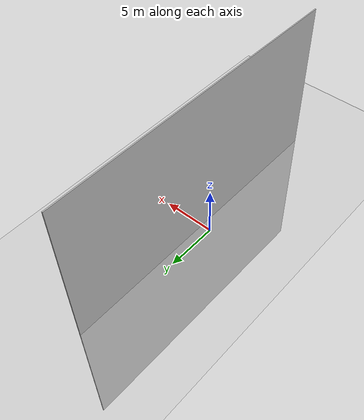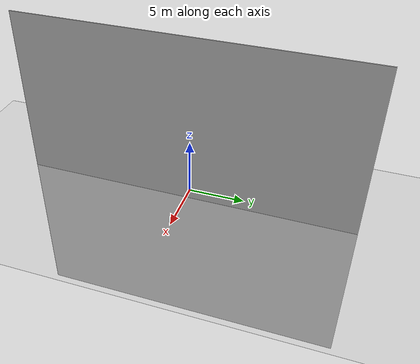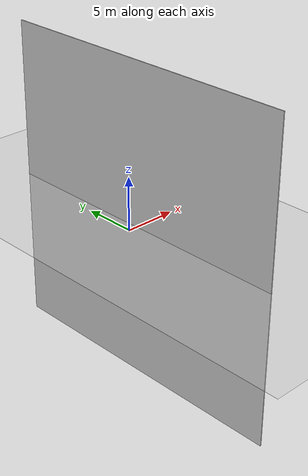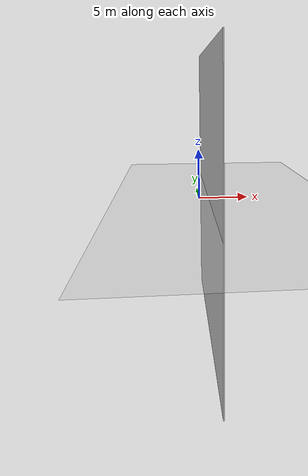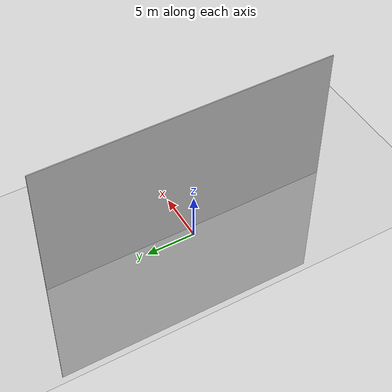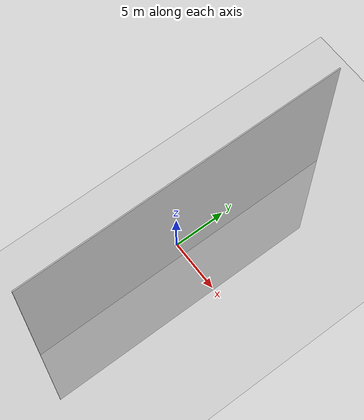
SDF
<?xml version="1.0"?>
<sdf version="1.6">
    <world name="default">
        <include>
            <uri>model://sun</uri>
        </include>

        <include>
            <uri>model://ground_plane</uri>
        </include>

        <include>
            <uri>model://realsense_camera</uri>
        </include>

        <model name="dummy_model">
            <pose>1.0 0.0 0.0 0.0 0.0 0.0</pose>
            <link name="link_1">
                <pose>0.0 0.0 0.0 0.0 0.0 0.0</pose>
                <inertial>
                    <pose>0.0 0.0 0.0 0.0 0.0 0.0</pose>
                    <inertia>
                        <ixx>1.0</ixx>
                        <ixy>0.0</ixy>
                        <ixz>0.0</ixz>
                        <iyy>1.0</iyy>
                        <iyz>0.0</iyz>
                        <izz>1.0</izz>
                    </inertia>
                    <mass>10.0</mass>
                </inertial>
                <visual name="visual_box">
                    <pose>0.0 0.0 0.0 0.0 0.0 0.0</pose>
                    <geometry>
                        <box>
                            <size>0.1 30.0 30.0</size>
                        </box>
                    </geometry>
                    <cast_shadows>true</cast_shadows>
                    <laser_retro>100.0</laser_retro>
                </visual>
                <collision name="collision_box">
                    <pose>0.0 0.0 0.0 0.0 0.0 0.0</pose>
                    <max_contacts>250</max_contacts>
                    <geometry>
                        <box>
                            <size>0.1 30.0 30.0</size>
                        </box>
                    </geometry>
                    <surface>
                        <friction>
                            <ode>
                                <mu>0.5</mu>
                                <mu2>0.2</mu2>
                                <fdir1>1.0 0 0</fdir1>
                                <slip1>0</slip1>
                                <slip2>0</slip2>
                            </ode>
                        </friction>
                        <bounce>
                            <restitution_coefficient>0</restitution_coefficient>
                            <threshold>1000000.0</threshold>
                        </bounce>
                        <contact>
                            <ode>
                                <soft_cfm>0</soft_cfm>
                                <soft_erp>0.2</soft_erp>
                                <kp>1e15</kp>
                                <kd>1e13</kd>
                                <max_vel>100.0</max_vel>
                                <min_depth>0.0001</min_depth>
                            </ode>
                        </contact>
                    </surface>
                    <laser_retro>100.0</laser_retro>
                </collision>
                <gravity>true</gravity>
                <self_collide>true</self_collide>
                <kinematic>false</kinematic>
            </link>
            <static>false</static>
        </model>
    </world>
</sdf>

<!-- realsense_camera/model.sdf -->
<sdf version="1.4">
  <model name="realsense_camera">
    <plugin name="realsense_plugin" filename="librealsense_gazebo_plugin.so"/>
    <pose frame="">0 0 0.015 0 0 0</pose>
    <link name="link">
      <inertial>
        <mass>0.0615752</mass>
        <inertia>
          <ixx>9.108e-05</ixx>
          <ixy>0</ixy>
          <ixz>0</ixz>
          <iyy>2.51e-06</iyy>
          <iyz>0</iyz>
          <izz>8.931e-05</izz>
        </inertia>
        <pose frame=''>0 0 0 0 0 0</pose>
      </inertial>
      <self_collide>0</self_collide>
      <enable_wind>0</enable_wind>
      <kinematic>0</kinematic>
      <gravity>1</gravity>
      <visual name="visual">
        <geometry>
          <mesh>
            <uri>model://realsense_camera/meshes/realsense.dae</uri>
          </mesh>
        </geometry>
      </visual>
      <collision name='collision'>
        <laser_retro>0</laser_retro>
        <max_contacts>10</max_contacts>
        <pose frame=''>0 0 0 0 -0 0</pose>
        <geometry>
          <box>
            <size>0.0078 0.130 0.0192</size>
          </box>
        </geometry>
        <surface>
          <friction>
            <ode>
              <mu>1</mu>
              <mu2>1</mu2>
              <fdir1>0 0 0</fdir1>
              <slip1>0</slip1>
              <slip2>0</slip2>
            </ode>
            <torsional>
              <coefficient>1</coefficient>
              <patch_radius>0</patch_radius>
              <surface_radius>0</surface_radius>
              <use_patch_radius>1</use_patch_radius>
              <ode>
                <slip>0</slip>
              </ode>
            </torsional>
          </friction>
          <bounce>
            <restitution_coefficient>0</restitution_coefficient>
            <threshold>1e+06</threshold>
          </bounce>
          <contact>
            <collide_without_contact>0</collide_without_contact>
            <collide_without_contact_bitmask>1</collide_without_contact_bitmask>
            <collide_bitmask>1</collide_bitmask>
            <ode>
              <soft_cfm>0</soft_cfm>
              <soft_erp>0.2</soft_erp>
              <kp>1e+13</kp>
              <kd>1</kd>
              <max_vel>0.01</max_vel>
              <min_depth>0</min_depth>
            </ode>
            <bullet>
              <split_impulse>1</split_impulse>
              <split_impulse_penetration_threshold>-0.01</split_impulse_penetration_threshold>
              <soft_cfm>0</soft_cfm>
              <soft_erp>0.2</soft_erp>
              <kp>1e+13</kp>
              <kd>1</kd>
            </bullet>
          </contact>
        </surface>
      </collision>
      <sensor name="color" type="camera">
        <pose frame="">0 -0.046 0.004 0 0 0</pose>
        <camera name="__default__">
          <horizontal_fov>1.047</horizontal_fov>
          <image>
            <width>640</width>
            <height>480</height>
            <format>RGB_INT8</format>
          </image>
          <clip>
            <near>0.1</near>
            <far>100</far>
          </clip>
          <noise>
            <type>gaussian</type>
            <mean>0.0</mean>
            <stddev>0.007</stddev>
          </noise>
        </camera>
        <always_on>1</always_on>
        <update_rate>60</update_rate>
        <visualize>1</visualize>
      </sensor>
      <sensor name="ired1" type="camera">
        <pose frame="">0 -0.06 0.004 0 0 0</pose>
        <camera name="__default__">
          <horizontal_fov>1.047</horizontal_fov>
          <image>
            <width>640</width>
            <height>480</height>
            <format>L_INT8</format>
          </image>
          <clip>
            <near>0.1</near>
            <far>100</far>
          </clip>
          <noise>
            <type>gaussian</type>
            <mean>0.0</mean>
            <stddev>0.007</stddev>
          </noise>
        </camera>
        <always_on>1</always_on>
        <update_rate>60</update_rate>
        <visualize>0</visualize>
      </sensor>
      <sensor name="ired2" type="camera">
        <pose frame="">0 0.01 0.004 0 0 0</pose>
        <camera name="__default__">
          <horizontal_fov>1.047</horizontal_fov>
          <image>
            <width>640</width>
            <height>480</height>
            <format>L_INT8</format>
          </image>
          <clip>
            <near>0.1</near>
            <far>100</far>
          </clip>
          <noise>
            <type>gaussian</type>
            <mean>0.0</mean>
            <stddev>0.007</stddev>
          </noise>
        </camera>
        <always_on>1</always_on>
        <update_rate>60</update_rate>
        <visualize>0</visualize>
      </sensor>
      <sensor name="depth" type="depth">
        <pose frame="">0 -0.03 0.004 0 0 0</pose>
        <camera name="__default__">
          <horizontal_fov>1.047</horizontal_fov>
          <image>
            <width>640</width>
            <height>480</height>
          </image>
          <clip>
            <near>0.1</near>
            <far>100</far>
          </clip>
          <noise>
            <type>gaussian</type>
            <mean>0.0</mean>
            <stddev>0.007</stddev>
          </noise>
        </camera>
        <always_on>1</always_on>
        <update_rate>60</update_rate>
        <visualize>0</visualize>
      </sensor>
    </link>
  </model>
</sdf>
